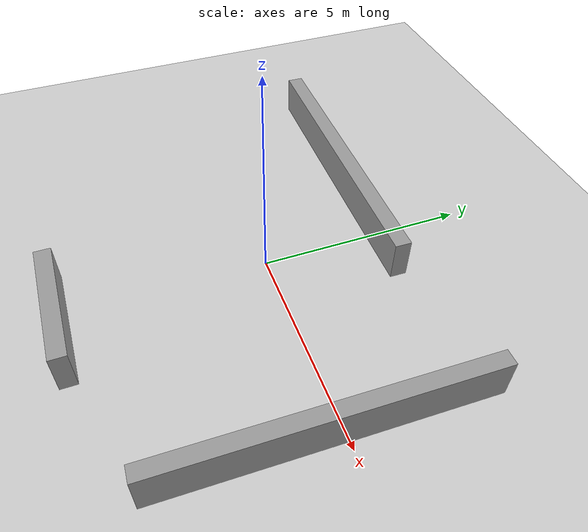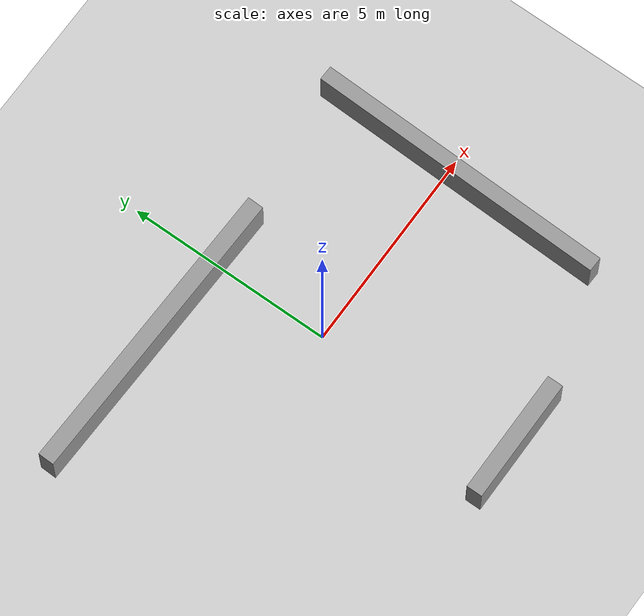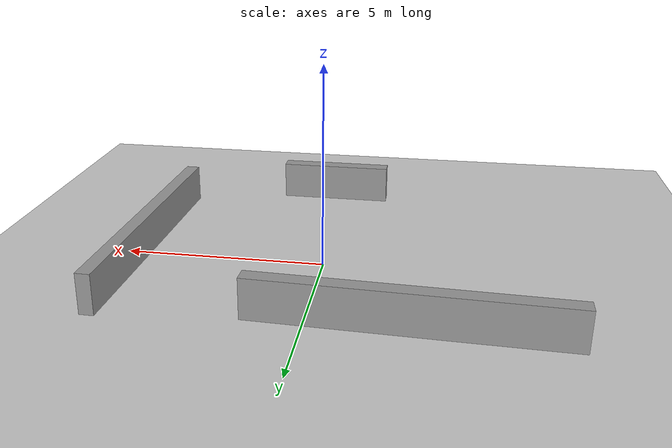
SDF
<sdf version="1.6">
 <world name="default">
  <light name="sun" type="directional">
   <pose>0 0 10 0 -0 0</pose>
   <diffuse>0.8 0.8 0.8 1</diffuse>
   <specular>0.2 0.2 0.2 1</specular>
   <attenuation>
    <range>1000</range>
    <constant>0.9</constant>
    <linear>0.01</linear>
    <quadratic>0.001</quadratic>
   </attenuation>
   <direction>-0.5 0.1 -0.9</direction>
  </light>
  <model name="ground_plane">
   <static>1</static>
   <link name="link">
    <collision name="collision">
     <geometry><plane><normal>0 0 1</normal><size>100 100</size></plane></geometry>
     <surface><friction><ode><mu>100</mu><mu2>50</mu2></ode></friction></surface>
    </collision>
    <visual name="visual">
     <cast_shadows>0</cast_shadows>
     <geometry><plane><normal>0 0 1</normal><size>100 100</size></plane></geometry>
     <material>
      <script><uri>file://media/materials/scripts/gazebo.material</uri><name>Gazebo/Grey</name></script>
     </material>
    </visual>
   </link>
  </model>
  <gravity>0 0 -9.8</gravity>
  <magnetic_field>6e-06 2.3e-05 -4.2e-05</magnetic_field>
  <atmosphere type="adiabatic"/>
  <physics name="default_physics" default="0" type="ode">
   <max_step_size>0.001</max_step_size>
   <real_time_factor>1</real_time_factor>
   <real_time_update_rate>1000</real_time_update_rate>
  </physics>
  <scene><ambient>0.4 0.4 0.4 1</ambient><background>0.7 0.7 0.7 1</background><shadows>1</shadows></scene>
  <spherical_coordinates>
   <surface_model>EARTH_WGS84</surface_model>
   <latitude_deg>0</latitude_deg>
   <longitude_deg>0</longitude_deg>
   <elevation>0</elevation>
   <heading_deg>0</heading_deg>
  </spherical_coordinates>
  <model name="unit_box">
   <pose>-2.25428 2.88099 0.488794 8.8e-05 -0.003088 -0.028391</pose>
   <link name="link">
    <inertial>
     <mass>1</mass>
     <inertia>
      <ixx>0.166667</ixx>
      <ixy>0</ixy>
      <ixz>0</ixz>
      <iyy>0.166667</iyy>
      <iyz>0</iyz>
      <izz>0.166667</izz>
     </inertia>
    </inertial>
    <collision name="collision"><geometry><box><size>7.2839 0.390306 1</size></box></geometry></collision>
    <visual name="visual">
     <geometry><box><size>7.2839 0.390306 1</size></box></geometry>
     <material>
      <script><name>Gazebo/Grey</name><uri>file://media/materials/scripts/gazebo.material</uri></script>
     </material>
    </visual>
   </link>
  </model>
  <model name="unit_box_0">
   <pose>4.61556 -0.328517 0.488629 0.003122 8.9e-05 -0.028614</pose>
   <link name="link">
    <inertial>
     <mass>1</mass>
     <inertia>
      <ixx>0.166667</ixx>
      <ixy>0</ixy>
      <ixz>0</ixz>
      <iyy>0.166667</iyy>
      <iyz>0</iyz>
      <izz>0.166667</izz>
     </inertia>
    </inertial>
    <collision name="collision"><geometry><box><size>0.354697 7.30772 1</size></box></geometry></collision>
    <visual name="visual">
     <geometry><box><size>0.354697 7.30772 1</size></box></geometry>
     <material>
      <script><name>Gazebo/Grey</name><uri>file://media/materials/scripts/gazebo.material</uri></script>
     </material>
    </visual>
   </link>
  </model>
  <model name="unit_box_1">
   <pose>0.325558 -4.79539 0.499821 1e-06 0.000119 0.001042</pose>
   <link name="link">
    <inertial>
     <mass>1</mass>
     <inertia>
      <ixx>0.166667</ixx>
      <ixy>0</ixy>
      <ixz>0</ixz>
      <iyy>0.166667</iyy>
      <iyz>0</iyz>
      <izz>0.166667</izz>
     </inertia>
    </inertial>
    <collision name="collision"><geometry><box><size>3.01285 0.384273 1</size></box></geometry></collision>
    <visual name="visual">
     <geometry><box><size>3.01285 0.384273 1</size></box></geometry>
     <material>
      <script><name>Gazebo/Grey</name><uri>file://media/materials/scripts/gazebo.material</uri></script>
     </material>
    </visual>
   </link>
  </model>
 </world>
</sdf>
